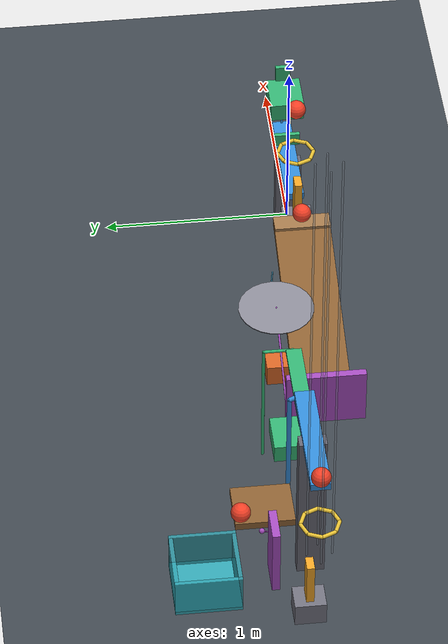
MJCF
<mujoco model="chain_reaction_clearance_revision">
  <compiler angle="degree" autolimits="true"/>
  <option timestep="0.002" gravity="0 0 -9.81" integrator="implicitfast" solver="Newton" iterations="150" tolerance="1e-10"/>
  <size njmax="4000" nconmax="800"/>

  <visual>
    <global azimuth="100" elevation="-20"/>
    <headlight ambient="0.45 0.45 0.45" diffuse="0.7 0.7 0.7" specular="0.2 0.2 0.2"/>
  </visual>

  <worldbody>
    <light name="overhead_light" pos="-1.5 0.5 5" dir="0 0 -1"/>
    <camera name="overview" pos="-1.5 -6 3.2" xyaxes="1 0 0 0 0.4 0.916515"/>

    <geom name="floor" type="plane" size="8 5 0.1" friction="0.72 0.005 0.001" condim="6" solref="0.01 0.716" solimp="0.95 0.99 0.001" rgba="0.25 0.28 0.31 1"/>

    <body name="ball1" pos="-0.30 0 1.02">
      <freejoint name="ball1_free"/>
      <geom name="ball1_sphere" type="sphere" size="0.05" mass="0.20" friction="0.72 0.005 0.001" condim="6" solref="0.01 0.716" solimp="0.95 0.99 0.001" rgba="0.95 0.25 0.15 1"/>
    </body>

    <!-- Minimum clear diameter of each capsule ring is 0.16 m. -->
    <body name="ring1" pos="-0.30 0 0.72">
      <geom name="ring1_01" type="capsule" fromto="0.097415 0 0 0.068883 0.068883 0" size="0.01" friction="0.72 0.005 0.001" solref="0.01 0.716" rgba="0.9 0.75 0.2 1"/>
      <geom name="ring1_02" type="capsule" fromto="0.068883 0.068883 0 0 0.097415 0" size="0.01" friction="0.72 0.005 0.001" solref="0.01 0.716" rgba="0.9 0.75 0.2 1"/>
      <geom name="ring1_03" type="capsule" fromto="0 0.097415 0 -0.068883 0.068883 0" size="0.01" friction="0.72 0.005 0.001" solref="0.01 0.716" rgba="0.9 0.75 0.2 1"/>
      <geom name="ring1_04" type="capsule" fromto="-0.068883 0.068883 0 -0.097415 0 0" size="0.01" friction="0.72 0.005 0.001" solref="0.01 0.716" rgba="0.9 0.75 0.2 1"/>
      <geom name="ring1_05" type="capsule" fromto="-0.097415 0 0 -0.068883 -0.068883 0" size="0.01" friction="0.72 0.005 0.001" solref="0.01 0.716" rgba="0.9 0.75 0.2 1"/>
      <geom name="ring1_06" type="capsule" fromto="-0.068883 -0.068883 0 0 -0.097415 0" size="0.01" friction="0.72 0.005 0.001" solref="0.01 0.716" rgba="0.9 0.75 0.2 1"/>
      <geom name="ring1_07" type="capsule" fromto="0 -0.097415 0 0.068883 -0.068883 0" size="0.01" friction="0.72 0.005 0.001" solref="0.01 0.716" rgba="0.9 0.75 0.2 1"/>
      <geom name="ring1_08" type="capsule" fromto="0.068883 -0.068883 0 0.097415 0 0" size="0.01" friction="0.72 0.005 0.001" solref="0.01 0.716" rgba="0.9 0.75 0.2 1"/>
    </body>

    <body name="lever1" pos="0 0 0.40">
      <inertial pos="0 0 0" mass="0.50" diaginertia="0.000483333 0.015066667 0.015416667"/>
      <joint name="lever1_hinge" type="hinge" axis="0 -1 0" damping="0.04" limited="true" range="0 45" solreflimit="0.004 0.716" solimplimit="0.99 0.999 0.001"/>
      <geom name="lever1_beam" type="box" size="0.30 0.05 0.02" mass="0.50" friction="0.72 0.005 0.001" condim="6" solref="0.01 0.716" rgba="0.2 0.55 0.85 1"/>
      <geom name="lever1_striker_mount" type="capsule" fromto="0.29 0 0.015 0.32 0 0.22" size="0.006" density="0" friction="0.72 0.005 0.001" solref="0.01 0.716" rgba="0.2 0.55 0.85 1"/>
      <geom name="lever1_striker" type="sphere" pos="0.32 0 0.22" size="0.01" density="0" friction="0.72 0.005 0.001" solref="0.01 0.716" rgba="0.2 0.55 0.85 1"/>
    </body>

    <body name="lever1_support" pos="0 0 0.20">
      <geom name="lever1_support_column" type="box" size="0.035 0.07 0.20" contype="0" conaffinity="0" rgba="0.4 0.4 0.45 1"/>
    </body>

    <!-- Pickup-mast bottom is z=0.60, not z=0.42.
         The raised lever striker approaches its right face horizontally.
         The low front striker reaches domino1 after 0.42 m of travel. -->
    <body name="cart1" pos="0.16 0 0.70">
      <joint name="cart1_slide" type="slide" axis="-1 0 0" damping="0.20" limited="true" range="0 0.65"/>
      <geom name="cart1_chassis" type="box" size="0.11 0.09 0.05" mass="0.43" friction="0.72 0.005 0.001" solref="0.01 0.716" rgba="0.2 0.7 0.45 1"/>
      <geom name="cart1_pickup_mast" type="box" pos="0.11 0 0.02" size="0.012 0.04 0.12" mass="0.04" friction="0.72 0.005 0.001" solref="0.01 0.716" rgba="0.2 0.7 0.45 1"/>
      <geom name="cart1_domino_striker" type="box" pos="-0.098 0 -0.20" size="0.012 0.07 0.035" mass="0.03" friction="0.72 0.005 0.001" solref="0.01 0.716" rgba="0.2 0.7 0.45 1"/>
    </body>

    <body name="domino1_platform" pos="-0.41 0 0.185">
      <geom name="domino1_platform_box" type="box" size="0.07 0.08 0.185" friction="0.72 0.005 0.001" solref="0.01 0.716" rgba="0.45 0.45 0.5 1"/>
    </body>

    <body name="domino1" pos="-0.41 0 0.49">
      <freejoint name="domino1_free"/>
      <geom name="domino1_box" type="box" size="0.04 0.02 0.12" mass="0.25" friction="0.72 0.005 0.001" condim="6" solref="0.01 0.716" rgba="0.95 0.65 0.15 1"/>
    </body>

    <body name="ball2" pos="-0.59 0 0.542020">
      <freejoint name="ball2_free"/>
      <geom name="ball2_sphere" type="sphere" size="0.05" mass="0.20" friction="0.72 0.005 0.001" condim="6" solref="0.01 0.716" rgba="0.95 0.25 0.15 1"/>
    </body>

    <!-- The deck is 1.00 m long, 0.30 m wide, and inclined 20 degrees.
         Its low-end upper surface is z=0.15.
         A level seat prevents ball2 from rolling before domino1 arrives. -->
    <body name="ramp1" pos="0 0 0">
      <geom name="ramp1_deck" type="box" pos="-1.036006 0 0.302216" quat="0.984807753 0 -0.173648178 0" size="0.50 0.15 0.02" friction="0.72 0.005 0.001" condim="6" solref="0.01 0.716" rgba="0.55 0.38 0.2 1"/>
      <geom name="ramp1_starting_seat" type="box" pos="-0.60 0 0.484020" size="0.05 0.15 0.008" friction="0.72 0.005 0.001" condim="6" solref="0.01 0.716" rgba="0.65 0.48 0.3 1"/>
    </body>

    <!-- Door front face is 0.10 m beyond the ramp low end.
         A rotating wheel, with frictional contact, restrains and releases
         the pendulum collar as the door rotates. -->
    <body name="door1" pos="-1.632693 0.21 0.19">
      <joint name="door1_hinge" type="hinge" axis="0 0 -1" damping="0.04" limited="true" range="0 70" solreflimit="0.004 0.716" solimplimit="0.999 0.9999 0.0001"/>
      <geom name="door1_panel" type="box" pos="0 -0.21 0" size="0.02 0.21 0.16" mass="0.44" friction="0.72 0.005 0.001" solref="0.006 0.716" rgba="0.65 0.3 0.75 1"/>
      <geom name="door1_bearing_bracket" type="capsule" fromto="0 0 0 0.436466 0 0.248207" size="0.005" mass="0.01" friction="0.72 0.005 0.001" solref="0.006 0.716" rgba="0.65 0.3 0.75 1"/>

      <body name="door1_release_roller" pos="0.436466 0 0.248207">
        <joint name="door1_release_roller_hinge" type="hinge" axis="0 0 1" damping="0.04" limited="false"/>
        <geom name="door1_release_roller_wheel" type="cylinder" size="0.20 0.002" mass="0.005" priority="1" friction="0.72 0.005 0.001" condim="6" solref="0.004 0.716" solimp="0.9999 0.99999 0.00001" rgba="0.55 0.55 0.6 1"/>
      </body>
    </body>

    <!-- Pendulum center-to-bob length is 0.50 m.
         Its 38-degree stroke runs from a 19-degree right lean
         to a 19-degree left lean. -->
    <body name="pendulum1" pos="-1.022784 0.21 0.532759" euler="0 -19 0">
      <joint name="pendulum1_hinge" type="hinge" axis="0 1 0" damping="0.04" stiffness="160" springref="38" limited="true" range="0 38" solreflimit="0.004 0.716" solimplimit="0.9999 0.99999 0.00001"/>
      <geom name="pendulum1_rod" type="capsule" fromto="0 0 0 0 0 -0.50" size="0.004" mass="0.075" friction="0.72 0.005 0.001" solref="0.004 0.716" solimp="0.9999 0.99999 0.00001" rgba="0.3 0.65 0.8 1"/>
      <geom name="pendulum1_release_collar" type="sphere" pos="0 0 -0.10" size="0.006" mass="0.005" priority="1" friction="0.72 0.005 0.001" condim="6" solref="0.004 0.716" solimp="0.9999 0.99999 0.00001" rgba="0.3 0.65 0.8 1"/>
      <geom name="pendulum1_bob" type="sphere" pos="0 0 -0.50" size="0.035" mass="0.27" friction="0.72 0.005 0.001" condim="6" solref="0.006 0.716" solimp="0.98 0.999 0.0005" rgba="0.3 0.65 0.8 1"/>
    </body>

    <body name="block1" pos="-1.26 0.21 0.06">
      <freejoint name="block1_free"/>
      <geom name="block1_cube" type="box" size="0.06 0.06 0.06" mass="0.35" friction="0.72 0.005 0.001" condim="6" solref="0.006 0.716" solimp="0.98 0.999 0.0005" rgba="0.85 0.4 0.15 1"/>
    </body>

    <!-- Initial block-to-cart face separation is 0.35 m.
         Cart2 reaches the low seesaw striker after 0.42 m. -->
    <body name="cart2" pos="-1.78 0.21 0.051">
      <joint name="cart2_slide" type="slide" axis="-1 0 0" damping="0.20" limited="true" range="0 0.54"/>
      <geom name="cart2_chassis" type="box" size="0.11 0.09 0.05" mass="0.42" friction="0.72 0.005 0.001" solref="0.006 0.716" solimp="0.98 0.999 0.0005" rgba="0.2 0.7 0.45 1"/>
      <geom name="cart2_latch_plate" type="box" pos="-0.379 0 0.749" size="0.265 0.04 0.01" mass="0.04" friction="0.72 0.005 0.001" solref="0.004 0.716" solimp="0.999 0.9999 0.0001" rgba="0.2 0.7 0.45 1"/>
      <geom name="cart2_latch_column" type="capsule" fromto="-0.09 0.15 0 -0.09 0.15 0.729" size="0.008" mass="0.02" friction="0.72 0.005 0.001" solref="0.01 0.716" rgba="0.2 0.7 0.45 1"/>
      <geom name="cart2_latch_crossbar" type="capsule" fromto="-0.09 0.15 0.729 -0.09 0 0.729" size="0.008" mass="0.02" friction="0.72 0.005 0.001" solref="0.01 0.716" rgba="0.2 0.7 0.45 1"/>
    </body>

    <body name="seesaw1" pos="-2.635 0.21 0.90" quat="0 0 0 1">
      <joint name="seesaw1_hinge" type="hinge" axis="0 -1 0" damping="0.04" stiffness="1" springref="42" limited="true" range="0 42" solreflimit="0.004 0.716" solimplimit="0.99 0.999 0.001"/>
      <geom name="seesaw1_beam" type="box" size="0.325 0.05 0.02" mass="0.43" friction="0.72 0.005 0.001" condim="6" solref="0.006 0.716" rgba="0.2 0.55 0.85 1"/>
      <geom name="seesaw1_latch_lug" type="box" pos="-0.325 0 -0.06" size="0.004 0.025 0.03" mass="0.03" friction="0.72 0.005 0.001" solref="0.004 0.716" solimp="0.999 0.9999 0.0001" rgba="0.2 0.55 0.85 1"/>
      <geom name="seesaw1_low_striker" type="capsule" fromto="-0.313 -0.075 -0.025 -0.313 -0.075 -0.84" size="0.012" mass="0.05" friction="0.72 0.005 0.001" solref="0.006 0.716" rgba="0.2 0.55 0.85 1"/>
      <geom name="seesaw1_striker_crossbar" type="capsule" fromto="-0.325 0 0 -0.313 -0.075 -0.025" size="0.012" mass="0.04" friction="0.72 0.005 0.001" solref="0.01 0.716" rgba="0.2 0.55 0.85 1"/>
    </body>

    <body name="seesaw1_support" pos="-2.635 0.21 0.45">
      <geom name="seesaw1_support_column" type="box" size="0.035 0.07 0.45" contype="0" conaffinity="0" rgba="0.4 0.4 0.45 1"/>
    </body>

    <body name="ball3" pos="-2.96 0.21 0.97">
      <freejoint name="ball3_free"/>
      <geom name="ball3_sphere" type="sphere" size="0.05" mass="0.20" contype="3" conaffinity="3" friction="0.72 0.005 0.001" condim="6" solref="0.006 0.716" rgba="0.95 0.25 0.15 1"/>
    </body>

    <!-- The guide constrains ball3, but does not collide with the beam.
         Ball3 retains a free joint. -->
    <body name="ball3_vertical_guide" pos="-2.96 0.21 0">
      <geom name="ball3_vertical_guide_x_positive" type="capsule" fromto="0.064 0 0.43 0.064 0 3.0" size="0.005" contype="2" conaffinity="2" friction="0.72 0.005 0.001" solref="0.006 0.716" rgba="0.65 0.7 0.75 0.35"/>
      <geom name="ball3_vertical_guide_x_negative" type="capsule" fromto="-0.064 0 0.43 -0.064 0 3.0" size="0.005" contype="2" conaffinity="2" friction="0.72 0.005 0.001" solref="0.006 0.716" rgba="0.65 0.7 0.75 0.35"/>
      <geom name="ball3_vertical_guide_y_positive" type="capsule" fromto="0 0.064 0.43 0 0.064 3.0" size="0.005" contype="2" conaffinity="2" friction="0.72 0.005 0.001" solref="0.006 0.716" rgba="0.65 0.7 0.75 0.35"/>
      <geom name="ball3_vertical_guide_y_negative" type="capsule" fromto="0 -0.064 0.43 0 -0.064 3.0" size="0.005" contype="2" conaffinity="2" friction="0.72 0.005 0.001" solref="0.006 0.716" rgba="0.65 0.7 0.75 0.35"/>
    </body>

    <body name="ring2" pos="-2.96 0.21 0.65">
      <geom name="ring2_01" type="capsule" fromto="0.097415 0 0 0.068883 0.068883 0" size="0.01" friction="0.72 0.005 0.001" solref="0.01 0.716" rgba="0.9 0.75 0.2 1"/>
      <geom name="ring2_02" type="capsule" fromto="0.068883 0.068883 0 0 0.097415 0" size="0.01" friction="0.72 0.005 0.001" solref="0.01 0.716" rgba="0.9 0.75 0.2 1"/>
      <geom name="ring2_03" type="capsule" fromto="0 0.097415 0 -0.068883 0.068883 0" size="0.01" friction="0.72 0.005 0.001" solref="0.01 0.716" rgba="0.9 0.75 0.2 1"/>
      <geom name="ring2_04" type="capsule" fromto="-0.068883 0.068883 0 -0.097415 0 0" size="0.01" friction="0.72 0.005 0.001" solref="0.01 0.716" rgba="0.9 0.75 0.2 1"/>
      <geom name="ring2_05" type="capsule" fromto="-0.097415 0 0 -0.068883 -0.068883 0" size="0.01" friction="0.72 0.005 0.001" solref="0.01 0.716" rgba="0.9 0.75 0.2 1"/>
      <geom name="ring2_06" type="capsule" fromto="-0.068883 -0.068883 0 0 -0.097415 0" size="0.01" friction="0.72 0.005 0.001" solref="0.01 0.716" rgba="0.9 0.75 0.2 1"/>
      <geom name="ring2_07" type="capsule" fromto="0 -0.097415 0 0.068883 -0.068883 0" size="0.01" friction="0.72 0.005 0.001" solref="0.01 0.716" rgba="0.9 0.75 0.2 1"/>
      <geom name="ring2_08" type="capsule" fromto="0.068883 -0.068883 0 0.097415 0 0" size="0.01" friction="0.72 0.005 0.001" solref="0.01 0.716" rgba="0.9 0.75 0.2 1"/>
    </body>

    <!-- Ball3 hits outside the near top edge, generating a positive-y impulse.
         Nominal first-contact ball-center height is z=0.41,
         which is 0.24 m below the center plane of ring2. -->
    <body name="domino2_platform" pos="-2.96 0.255 0.0633495">
      <geom name="domino2_platform_box" type="box" size="0.07 0.08 0.0633495" friction="0.72 0.005 0.001" solref="0.01 0.716" rgba="0.45 0.45 0.5 1"/>
    </body>

    <body name="domino2" pos="-2.96 0.255 0.246699">
      <freejoint name="domino2_free"/>
      <geom name="domino2_box" type="box" size="0.04 0.02 0.12" mass="0.25" friction="0.72 0.005 0.001" condim="6" solref="0.006 0.716" rgba="0.95 0.65 0.15 1"/>
    </body>

    <!-- The flap panel and shelf occupy separate x strips.
         Its offset striking tip reaches ball4 without passing through shelf1. -->
    <body name="flap1" pos="-2.96 0.435 0.67">
      <joint name="flap1_hinge" type="hinge" axis="1 0 0" damping="0.04" limited="true" range="0 60" solreflimit="0.004 0.716" solimplimit="0.99 0.999 0.001"/>
      <geom name="flap1_panel" type="box" pos="0 0 -0.19" size="0.09 0.02 0.19" mass="0.265" friction="0.72 0.005 0.001" solref="0.006 0.716" rgba="0.65 0.3 0.75 1"/>
      <geom name="flap1_striker_mount" type="capsule" fromto="0.075 0 -0.14 0.09 0.05 -0.14" size="0.003" mass="0.005" friction="0.72 0.005 0.001" solref="0.006 0.716" rgba="0.65 0.3 0.75 1"/>
      <geom name="flap1_striker_tip" type="sphere" pos="0.09 0.05 -0.14" size="0.014" mass="0.01" friction="0.72 0.005 0.001" solref="0.006 0.716" rgba="0.65 0.3 0.75 1"/>
    </body>

    <!-- Shelf footprint is 0.25 m in x and 0.30 m in y.
         Ball4 starts 0.03 m short of its positive-y edge.
         Rolling friction is small on the shelf, but sliding friction is 0.72. -->
    <body name="shelf1" pos="-2.725 0.465 0.55">
      <geom name="shelf1_deck" type="box" size="0.125 0.15 0.02" friction="0.72 0.005 0.0001" condim="6" solref="0.01 0.716" rgba="0.55 0.38 0.2 1"/>
    </body>

    <body name="ball4" pos="-2.82 0.585 0.62">
      <freejoint name="ball4_free"/>
      <geom name="ball4_sphere" type="sphere" size="0.05" mass="0.20" friction="0.72 0.005 0.0001" condim="6" solref="0.01 0.716" solimp="0.95 0.99 0.001" rgba="0.95 0.25 0.15 1"/>
    </body>

    <body name="cup1" pos="-2.73 0.75 0">
      <geom name="cup1_bottom" type="box" pos="0 0 0.01" size="0.17 0.17 0.01" friction="0.72 0.005 0.001" condim="6" solref="0.01 0.716" solimp="0.95 0.99 0.001" rgba="0.2 0.65 0.7 1"/>
      <geom name="cup1_wall_x_positive" type="box" pos="0.16 0 0.12" size="0.01 0.17 0.10" friction="0.72 0.005 0.001" condim="6" solref="0.01 0.716" solimp="0.95 0.99 0.001" rgba="0.2 0.65 0.7 0.8"/>
      <geom name="cup1_wall_x_negative" type="box" pos="-0.16 0 0.12" size="0.01 0.17 0.10" friction="0.72 0.005 0.001" condim="6" solref="0.01 0.716" solimp="0.95 0.99 0.001" rgba="0.2 0.65 0.7 0.8"/>
      <geom name="cup1_wall_y_positive" type="box" pos="0 0.16 0.12" size="0.15 0.01 0.10" friction="0.72 0.005 0.001" condim="6" solref="0.01 0.716" solimp="0.95 0.99 0.001" rgba="0.2 0.65 0.7 0.8"/>
      <geom name="cup1_wall_y_negative" type="box" pos="0 -0.16 0.12" size="0.15 0.01 0.10" friction="0.72 0.005 0.001" condim="6" solref="0.01 0.716" solimp="0.95 0.99 0.001" rgba="0.2 0.65 0.7 0.8"/>
    </body>
  </worldbody>

  <keyframe>
    <key name="start" time="0"/>
  </keyframe>
</mujoco>
